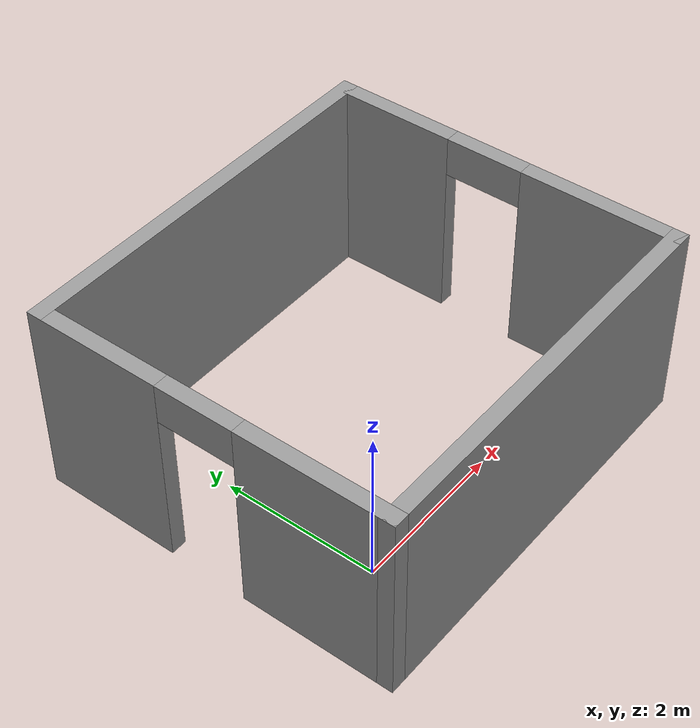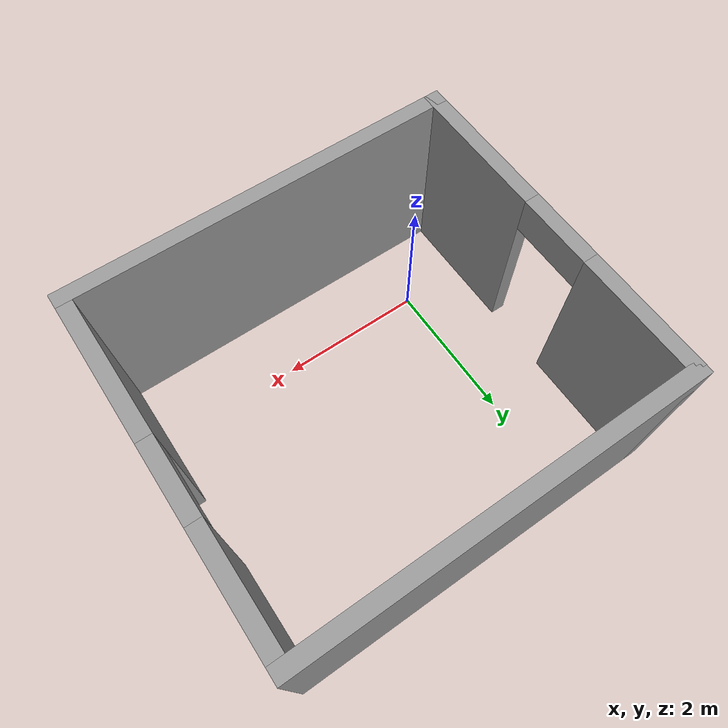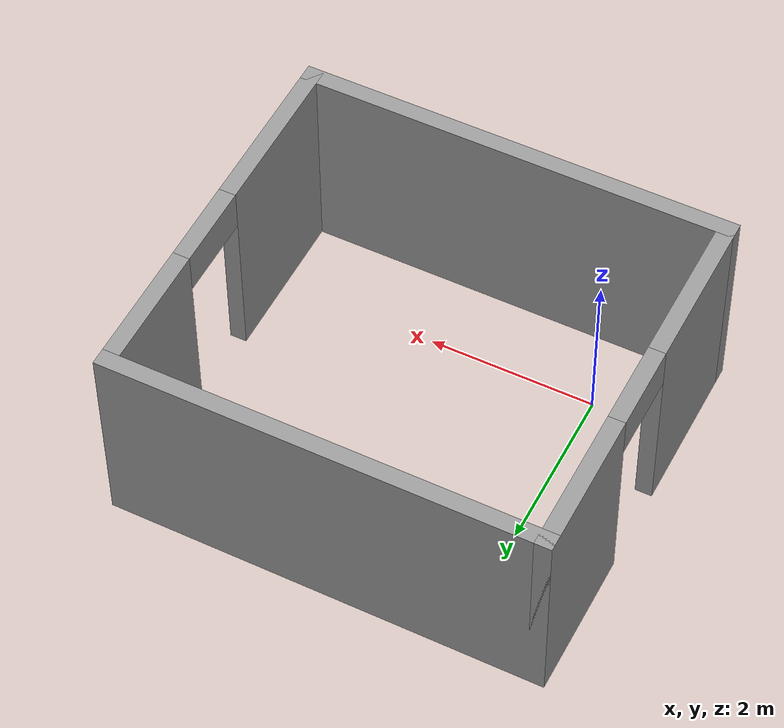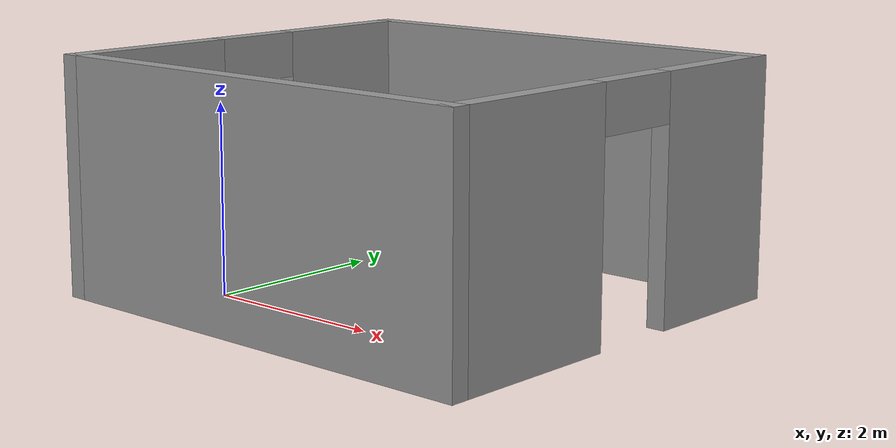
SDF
<?xml version='1.0'?>
<sdf version='1.4'>
  <model name='warehouse'>
    <link name='Wall_0'>
      <collision name='Wall_0_Collision'>
        <geometry>
          <box>
            <size>5.2 0.2 2.5</size>
          </box>
        </geometry>
        <pose>0 0 1.25 0 -0 0</pose>
      </collision>
      <visual name='Wall_0_Visual'>
        <pose>0 0 1.25 0 -0 0</pose>
        <geometry>
          <box>
            <size>5.2 0.2 2.5</size>
          </box>
        </geometry>
        <material>
          <script>
            <uri>file://media/materials/scripts/gazebo.material</uri>
            <name>Gazebo/Grey</name>
          </script>
        </material>
      </visual>
      <velocity_decay>
        <linear>0</linear>
        <angular>0</angular>
      </velocity_decay>
      <pose>1.5 3.5 0 0 -0 0</pose>
    </link>
    <link name='Wall_1'>
      <pose>4 1.25 0 0 0 -1.5708</pose>
      <visual name='Wall_1_Visual_0'>
        <pose>-1.52147 0 1.25 0 -0 0</pose>
        <geometry>
          <box>
            <size>1.65705 0.2 2.5</size>
          </box>
        </geometry>
        <material>
          <script>
            <uri>file://media/materials/scripts/gazebo.material</uri>
            <name>Gazebo/Grey</name>
          </script>
        </material>
      </visual>
      <collision name='Wall_1_Collision_0'>
        <geometry>
          <box>
            <size>1.65705 0.2 2.5</size>
          </box>
        </geometry>
        <pose>-1.52147 0 1.25 0 -0 0</pose>
      </collision>
      <visual name='Wall_1_Visual_1'>
        <pose>1.32853 0 1.25 0 -0 0</pose>
        <geometry>
          <box>
            <size>2.04295 0.2 2.5</size>
          </box>
        </geometry>
        <material>
          <script>
            <uri>file://media/materials/scripts/gazebo.material</uri>
            <name>Gazebo/Grey</name>
          </script>
        </material>
      </visual>
      <collision name='Wall_1_Collision_1'>
        <geometry>
          <box>
            <size>2.04295 0.2 2.5</size>
          </box>
        </geometry>
        <pose>1.32853 0 1.25 0 -0 0</pose>
      </collision>
      <visual name='Wall_1_Visual_2'>
        <pose>-0.192946 0 2.25 0 -0 0</pose>
        <geometry>
          <box>
            <size>1 0.2 0.5</size>
          </box>
        </geometry>
        <material>
          <script>
            <uri>file://media/materials/scripts/gazebo.material</uri>
            <name>Gazebo/Grey</name>
          </script>
        </material>
      </visual>
      <collision name='Wall_1_Collision_2'>
        <geometry>
          <box>
            <size>1 0.2 0.5</size>
          </box>
        </geometry>
        <pose>-0.192946 0 2.25 0 -0 0</pose>
      </collision>
    </link>
    <link name='Wall_2'>
      <collision name='Wall_2_Collision'>
        <geometry>
          <box>
            <size>5.2 0.2 2.5</size>
          </box>
        </geometry>
        <pose>0 0 1.25 0 -0 0</pose>
      </collision>
      <visual name='Wall_2_Visual'>
        <pose>0 0 1.25 0 -0 0</pose>
        <geometry>
          <box>
            <size>5.2 0.2 2.5</size>
          </box>
        </geometry>
        <material>
          <script>
            <uri>file://media/materials/scripts/gazebo.material</uri>
            <name>Gazebo/Grey</name>
          </script>
        </material>
      </visual>
      <velocity_decay>
        <linear>0</linear>
        <angular>0</angular>
      </velocity_decay>
      <pose>1.5 -1 0 0 -0 3.14159</pose>
    </link>
    <link name='Wall_3'>
      <pose>-1 1.25 0 0 -0 1.5708</pose>
      <visual name='Wall_3_Visual_0'>
        <pose>-1.37479 0 1.25 0 -0 0</pose>
        <geometry>
          <box>
            <size>1.95042 0.2 2.5</size>
          </box>
        </geometry>
        <material>
          <script>
            <uri>file://media/materials/scripts/gazebo.material</uri>
            <name>Gazebo/Grey</name>
          </script>
        </material>
      </visual>
      <collision name='Wall_3_Collision_0'>
        <geometry>
          <box>
            <size>1.95042 0.2 2.5</size>
          </box>
        </geometry>
        <pose>-1.37479 0 1.25 0 -0 0</pose>
      </collision>
      <visual name='Wall_3_Visual_1'>
        <pose>1.47521 0 1.25 0 -0 0</pose>
        <geometry>
          <box>
            <size>1.74958 0.2 2.5</size>
          </box>
        </geometry>
        <material>
          <script>
            <uri>file://media/materials/scripts/gazebo.material</uri>
            <name>Gazebo/Grey</name>
          </script>
        </material>
      </visual>
      <collision name='Wall_3_Collision_1'>
        <geometry>
          <box>
            <size>1.74958 0.2 2.5</size>
          </box>
        </geometry>
        <pose>1.47521 0 1.25 0 -0 0</pose>
      </collision>
      <visual name='Wall_3_Visual_2'>
        <pose>0.100424 0 2.25 0 -0 0</pose>
        <geometry>
          <box>
            <size>1 0.2 0.5</size>
          </box>
        </geometry>
        <material>
          <script>
            <uri>file://media/materials/scripts/gazebo.material</uri>
            <name>Gazebo/Grey</name>
          </script>
        </material>
      </visual>
      <collision name='Wall_3_Collision_2'>
        <geometry>
          <box>
            <size>1 0.2 0.5</size>
          </box>
        </geometry>
        <pose>0.100424 0 2.25 0 -0 0</pose>
      </collision>
    </link>
    <static>1</static>
  </model>
</sdf>
